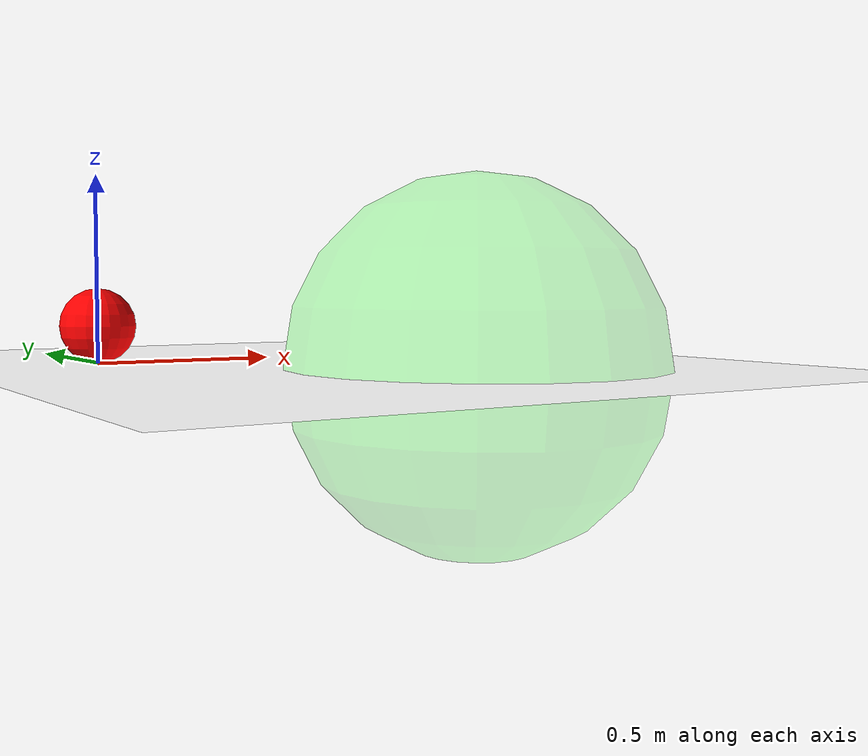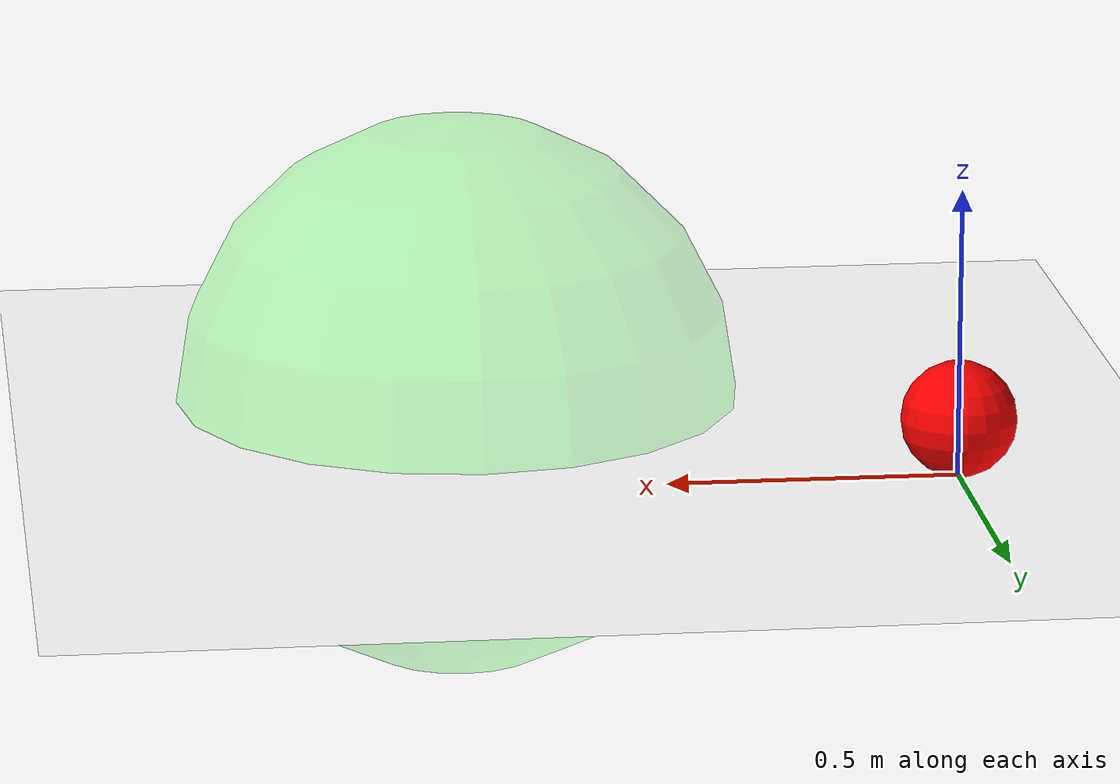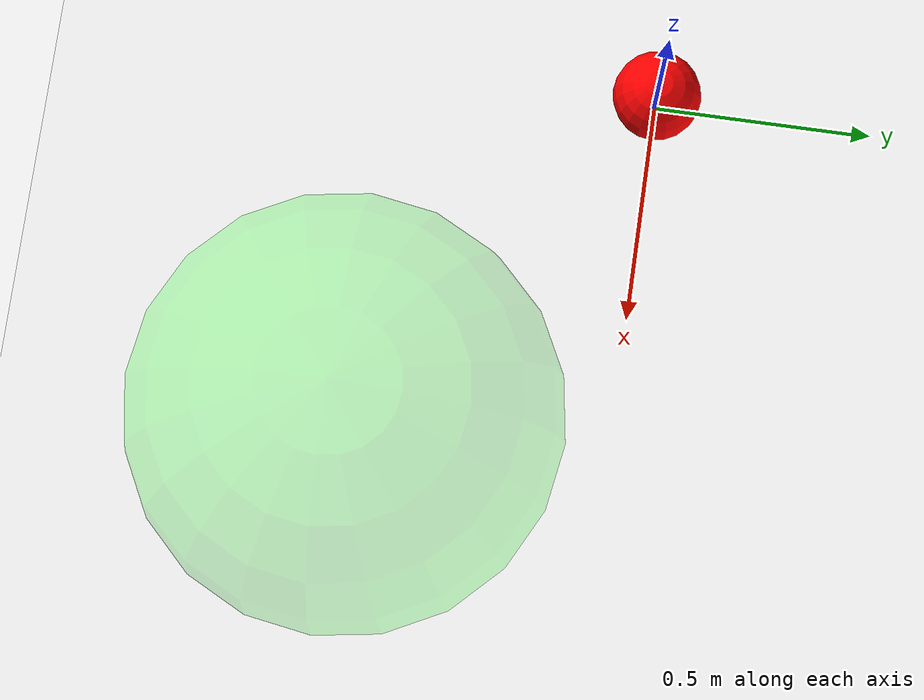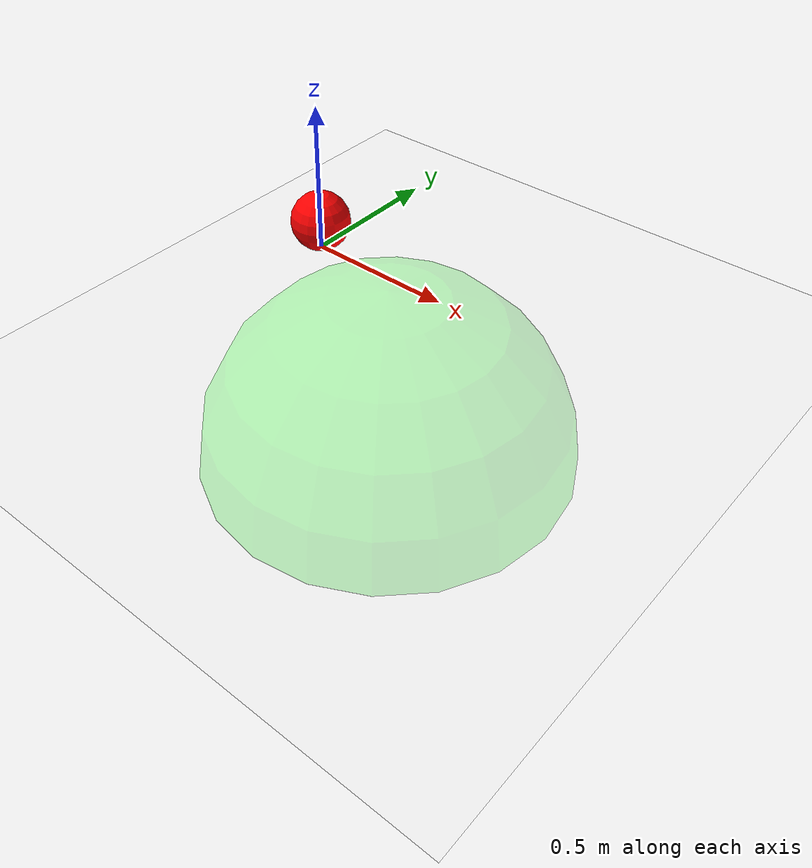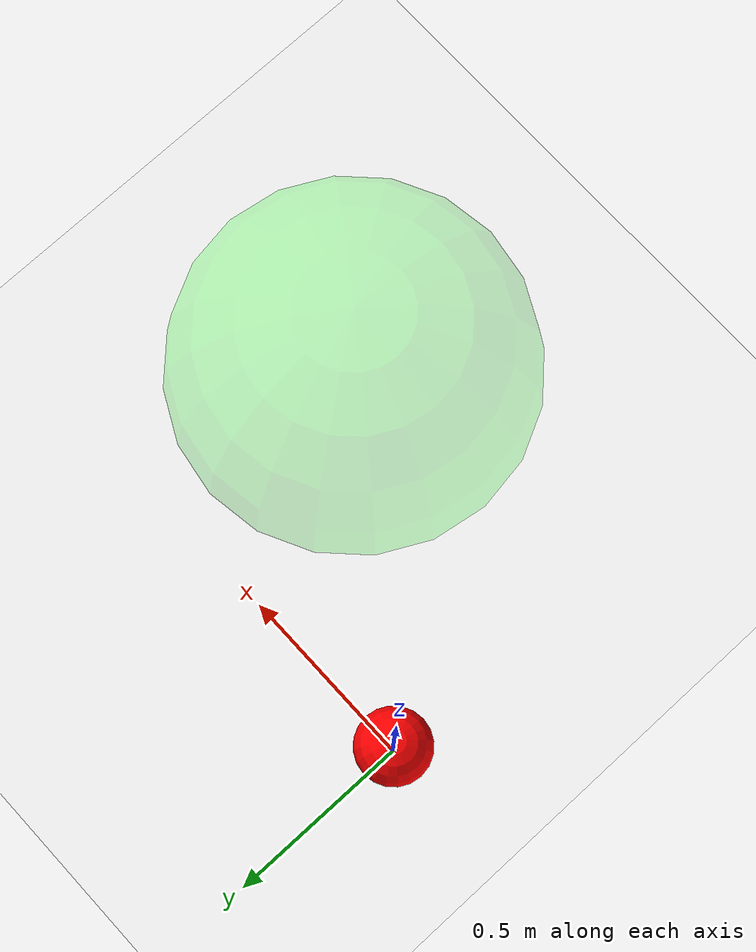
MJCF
<?xml version="1.0" encoding="utf-8"?>
<mujoco>
	<size njmax="3000" nconmax="1000"></size>
	<option timestep="0.002"></option>
	<default>
		<geom condim="3" density="1" rgba="1 0 0 1"></geom>
		<joint damping=".001"></joint>
		<motor ctrlrange="-1 1" ctrllimited="true" forcerange="-.05 .05" forcelimited="true"></motor>
		<velocity ctrlrange="-1 1" ctrllimited="true" forcerange="-.05 .05" forcelimited="true"></velocity>
		<site size="0.032" type="sphere"></site>
	</default>
	<worldbody>
		<geom name="floor" size="3.5 3.5 0.1" type="plane" condim="3" rgba="1 1 1 1" material="MatPlane"></geom>
		<body name="robot" pos="0 0 0.1" quat="1 0.0 0.0 0">
			<camera name="vision" pos="0 0 .15" xyaxes="0 -1 0 .4 0 1" fovy="90"></camera>
			<camera name="track" mode="track" pos="-1.9593812416268037 0.4010301110403122 2" xyaxes="-0.2005150555201561 -0.9796906208134019 0 0.9796906208134019 -0.2005150555201561 1"></camera>
			<joint type="slide" axis="1 0 0" name="x" damping="0.1"/>
            <joint type="slide" axis="0 1 0" name="y" damping="0.1"/>
			<geom name="robot" type="sphere" size=".1" friction="1 0.01 0.01"></geom>
			<site name="robot" rgba="1 0 0 .1"></site>
		</body>
		<body name="goal" pos="0.8 -0.6 0" quat="0.8917140993290078 0.0 0.0 0.4525991218041153">
			<joint type="slide" axis="1 0 0" name="x_goal" damping="0"/>
            <joint type="slide" axis="0 1 0" name="y_goal" damping="0"/>
			<geom name="goal" type="sphere" size="0.5" rgba="0.0 1.0 0.0 0.25" group="0" contype="0" conaffinity="0"></geom>
		</body>
		<body name="hazard0" pos="-0.33947860805272256 1.2449961672639667 0.02" quat="-0.8874594902933746 0.0 0.0 0.46088572671349226">
			<geom name="hazard0" type="sphere" size="0.3 " rgba="0.0 0.0 1.0 0.25" group="3" contype="0" conaffinity="0"></geom>
			<joint type="slide" axis="1 0 0" name="x_hazard0" damping="0"/>
            <joint type="slide" axis="0 1 0" name="y_hazard0" damping="0"/>
		</body>
		<body name="hazard1" pos="-1.2893507298225213 -1.3691867981931911 0.02" quat="-0.13097580495473057 0.0 0.0 0.9913855650131589">
			<geom name="hazard1" type="sphere" size="0.3 " rgba="0.0 0.0 1.0 0.25" group="3" contype="0" conaffinity="0"></geom>
			<joint type="slide" axis="1 0 0" name="x_hazard1" damping="0"/>
            <joint type="slide" axis="0 1 0" name="y_hazard1" damping="0"/>
		</body>
		<body name="hazard2" pos="-0.1495188656771398 0.20817760465517265 0.02" quat="0.6482565808992422 0.0 0.0 0.761421962725547">
			<geom name="hazard2" type="sphere" size="0.3 " rgba="0.0 0.0 1.0 0.25" group="3" contype="0" conaffinity="0"></geom>
			<joint type="slide" axis="1 0 0" name="x_hazard2" damping="0"/>
            <joint type="slide" axis="0 1 0" name="y_hazard2" damping="0"/>
		</body>
		<body name="hazard3" pos="-0.16283266718968248 -1.0928996984525527 0.02" quat="-0.47554180835288684 0.0 0.0 0.8796931217808095">
			<geom name="hazard3" type="sphere" size="0.3 " rgba="0.0 0.0 1.0 0.25" group="3" contype="0" conaffinity="0"></geom>
			<joint type="slide" axis="1 0 0" name="x_hazard3" damping="0"/>
            <joint type="slide" axis="0 1 0" name="y_hazard3" damping="0"/>
		</body>
		<body name="hazard4" pos="0.6867664682614674 0.25120230285012113 0.02" quat="0.6901180549505869 0.0 0.0 0.7236968082223514">
			<geom name="hazard4" type="sphere" size="0.3 " rgba="0.0 0.0 1.0 0.25" group="3" contype="0" conaffinity="0"></geom>
			<joint type="slide" axis="1 0 0" name="x_hazard4" damping="0"/>
            <joint type="slide" axis="0 1 0" name="y_hazard4" damping="0"/>
		</body>
		<body name="hazard5" pos="-1.5870474510532357 0.758927576524211 0.02" quat="0.6068483701780076 0.0 0.0 0.7948176241203361">
			<geom name="hazard5" type="sphere" size="0.3 " rgba="0.0 0.0 1.0 0.25" group="3" contype="0" conaffinity="0"></geom>
			<joint type="slide" axis="1 0 0" name="x_hazard5" damping="0"/>
            <joint type="slide" axis="0 1 0" name="y_hazard5" damping="0"/>
		</body>
		<body name="hazard6" pos="-1.4637180686184053 -0.0882165924506253 0.02" quat="0.3252881350407623 0.0 0.0 0.9456149476407947">
			<geom name="hazard6" type="sphere" size="0.3 " rgba="0.0 0.0 1.0 0.25" group="3" contype="0" conaffinity="0"></geom>
			<joint type="slide" axis="1 0 0" name="x_hazard6" damping="0"/>
            <joint type="slide" axis="0 1 0" name="y_hazard6" damping="0"/>
		</body>
		<body name="hazard7" pos="1.519618251486293 0.022765937203953923 0.02" quat="-0.9988166023856219 0.0 0.0 0.048635324598922024">
			<geom name="hazard7" type="sphere" size="0.3 " rgba="0.0 0.0 1.0 0.25" group="3" contype="0" conaffinity="0"></geom>
			<joint type="slide" axis="1 0 0" name="x_hazard7" damping="0"/>
            <joint type="slide" axis="0 1 0" name="y_hazard7" damping="0"/>
		</body>
		<light cutoff="100" diffuse="1 1 1" dir="0 0 -1" directional="true" exponent="1" pos="0 0 0.5" specular="0 0 0" castshadow="false"></light>
		<camera name="fixednear" pos="0 -2 2" zaxis="0 -1 1"></camera>
		<camera name="fixedfar" pos="0 -5 5" zaxis="0 -1 1"></camera>
	</worldbody>
	<sensor>
		<accelerometer site="robot" name="accelerometer"></accelerometer>
		<velocimeter site="robot" name="velocimeter"></velocimeter>
		<gyro site="robot" name="gyro"></gyro>
		<magnetometer site="robot" name="magnetometer"></magnetometer>
		<subtreecom body="robot" name="subtreecom"></subtreecom>
		<subtreelinvel body="robot" name="subtreelinvel"></subtreelinvel>
		<subtreeangmom body="robot" name="subtreeangmom"></subtreeangmom>
	</sensor>
	<actuator>
        <motor gear="20" joint="x" name="x"/>
        <motor gear="20" joint="y" name="y"/>
	</actuator>
	<equality>
	</equality>
	<asset>
		<texture type="skybox" builtin="gradient" rgb1="0.527 0.582 0.906" rgb2="0.1 0.1 0.35" width="800" height="800" markrgb="1 1 1" mark="random" random="0.001"></texture>
		<texture name="texplane" builtin="checker" height="100" width="100" rgb1="0.7 0.7 0.7" rgb2="0.8 0.8 0.8" type="2d"></texture>
		<material name="MatPlane" reflectance="0.1" shininess="0.1" specular="0.1" texrepeat="10 10" texture="texplane"></material>
	</asset>
</mujoco>
